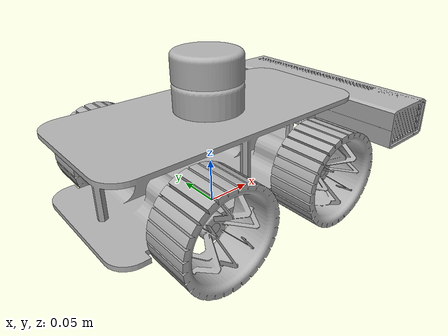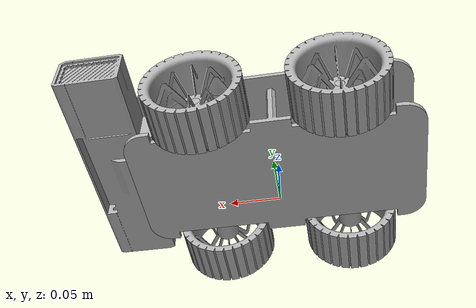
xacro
<?xml version="1.0" ?>
<robot name="pathfinder" xmlns:xacro="http://www.ros.org/wiki/xacro">

<xacro:include filename="$(find pathfinder_description)/urdf/materials.xacro" />
<xacro:include filename="$(find pathfinder_description)/urdf/pathfinder.trans" />

<xacro:include filename="$(find pathfinder_description)/gazebo/pathfinder_description_materials.gazebo" />
<xacro:include filename="$(find pathfinder_description)/gazebo/pathfinder_description_physics.gazebo" />
<xacro:include filename="$(find pathfinder_description)/gazebo/pathfinder_description_plugins.gazebo" />

<link name="base_link">
  <inertial>
    <origin rpy="0 0 0" xyz="-1.1752552426393709e-16 5.876276213196854e-17 0.0736276069033502"/>
    <mass value="4.6586970268492465"/>
    <inertia ixx="0.013672" ixy="0.0" ixz="-0.0" iyy="0.032955" iyz="-0.0" izz="0.033477"/>
  </inertial>
  <visual>
    <origin rpy="0 0 0" xyz="0 0 0"/>
    <geometry>
      <mesh filename="package://pathfinder_description/meshes/base_link.stl" scale="0.001 0.001 0.001"/>
    </geometry>
    <material name="silver"/>
  </visual>
  <collision>
    <origin rpy="0 0 0" xyz="0 0 0"/>
    <geometry>
      <mesh filename="package://pathfinder_description/meshes/base_link.stl" scale="0.001 0.001 0.001"/>
    </geometry>
  </collision>
</link>

<link name="kinect_link_1">
  <inertial>
    <origin rpy="0 0 0" xyz="0.021463788268805295 0.0005758268808835205 -0.02206711015374241"/>
    <mass value="1.650508832327415"/>
    <inertia ixx="0.02781" ixy="0.000158" ixz="-0.000109" iyy="0.003289" iyz="2.2e-05" izz="0.029269"/>
  </inertial>
  <visual>
    <origin rpy="0 0 0" xyz="-0.15 -0.0 -0.105"/>
    <geometry>
      <mesh filename="package://pathfinder_description/meshes/kinect_link_1.stl" scale="0.001 0.001 0.001"/>
    </geometry>
    <material name="silver"/>
  </visual>
  <collision>
    <origin rpy="0 0 0" xyz="-0.15 -0.0 -0.105"/>
    <geometry>
      <mesh filename="package://pathfinder_description/meshes/kinect_link_1.stl" scale="0.001 0.001 0.001"/>
    </geometry>
  </collision>
</link>

<link name="lidar_link_1">
  <inertial>
    <origin rpy="0 0 0" xyz="-4.634107258209184e-18 4.634107258209184e-18 0.014866098910764486"/>
    <mass value="0.7384321563465578"/>
    <inertia ixx="0.000295" ixy="0.0" ixz="0.0" iyy="0.000295" iyz="-0.0" izz="0.000481"/>
  </inertial>
  <visual>
    <origin rpy="0 0 0" xyz="-0.0 -0.0 -0.14"/>
    <geometry>
      <mesh filename="package://pathfinder_description/meshes/lidar_link_1.stl" scale="0.001 0.001 0.001"/>
    </geometry>
    <material name="silver"/>
  </visual>
  <collision>
    <origin rpy="0 0 0" xyz="-0.0 -0.0 -0.14"/>
    <geometry>
      <mesh filename="package://pathfinder_description/meshes/lidar_link_1.stl" scale="0.001 0.001 0.001"/>
    </geometry>
  </collision>
</link>

<link name="fr_wheel_1">
  <inertial>
    <origin rpy="0 0 0" xyz="-3.215640900638972e-07 0.0007481673887969331 -1.8936020806936682e-10"/>
    <mass value="0.6465952825483331"/>
    <inertia ixx="0.000739" ixy="-0.0" ixz="0.0" iyy="0.001218" iyz="0.0" izz="0.000739"/>
  </inertial>
  <visual>
    <origin rpy="0 0 0" xyz="-0.070134 0.095 -0.05"/>
    <geometry>
      <mesh filename="package://pathfinder_description/meshes/fr_wheel_1.stl" scale="0.001 0.001 0.001"/>
    </geometry>
    <material name="silver"/>
  </visual>
  <collision>
    <origin rpy="0 0 0" xyz="-0.070134 0.095 -0.05"/>
    <geometry>
      <mesh filename="package://pathfinder_description/meshes/fr_wheel_1.stl" scale="0.001 0.001 0.001"/>
    </geometry>
  </collision>
</link>

<link name="rl_wheel_1">
  <inertial>
    <origin rpy="0 0 0" xyz="3.2156409002226383e-07 -0.0007481673887969331 -1.8936038848060832e-10"/>
    <mass value="0.6465952825483331"/>
    <inertia ixx="0.000739" ixy="-0.0" ixz="-0.0" iyy="0.001218" iyz="-0.0" izz="0.000739"/>
  </inertial>
  <visual>
    <origin rpy="0 0 0" xyz="0.070134 -0.095 -0.05"/>
    <geometry>
      <mesh filename="package://pathfinder_description/meshes/rl_wheel_1.stl" scale="0.001 0.001 0.001"/>
    </geometry>
    <material name="silver"/>
  </visual>
  <collision>
    <origin rpy="0 0 0" xyz="0.070134 -0.095 -0.05"/>
    <geometry>
      <mesh filename="package://pathfinder_description/meshes/rl_wheel_1.stl" scale="0.001 0.001 0.001"/>
    </geometry>
  </collision>
</link>

<link name="fl_wheel_1">
  <inertial>
    <origin rpy="0 0 0" xyz="-3.219730995429604e-07 -0.0007481653815892414 9.377970136559277e-10"/>
    <mass value="0.6465951127279741"/>
    <inertia ixx="0.000739" ixy="-0.0" ixz="-0.0" iyy="0.001218" iyz="-0.0" izz="0.000739"/>
  </inertial>
  <visual>
    <origin rpy="0 0 0" xyz="-0.070134 -0.095 -0.05"/>
    <geometry>
      <mesh filename="package://pathfinder_description/meshes/fl_wheel_1.stl" scale="0.001 0.001 0.001"/>
    </geometry>
    <material name="silver"/>
  </visual>
  <collision>
    <origin rpy="0 0 0" xyz="-0.070134 -0.095 -0.05"/>
    <geometry>
      <mesh filename="package://pathfinder_description/meshes/fl_wheel_1.stl" scale="0.001 0.001 0.001"/>
    </geometry>
  </collision>
</link>

<link name="rr_wheel_1">
  <inertial>
    <origin rpy="0 0 0" xyz="3.2168768794582636e-07 0.0007481653815892414 -8.339158530379365e-10"/>
    <mass value="0.6465951127279755"/>
    <inertia ixx="0.000739" ixy="-0.0" ixz="-0.0" iyy="0.001218" iyz="-0.0" izz="0.000739"/>
  </inertial>
  <visual>
    <origin rpy="0 0 0" xyz="0.070134 0.095 -0.05"/>
    <geometry>
      <mesh filename="package://pathfinder_description/meshes/rr_wheel_1.stl" scale="0.001 0.001 0.001"/>
    </geometry>
    <material name="silver"/>
  </visual>
  <collision>
    <origin rpy="0 0 0" xyz="0.070134 0.095 -0.05"/>
    <geometry>
      <mesh filename="package://pathfinder_description/meshes/rr_wheel_1.stl" scale="0.001 0.001 0.001"/>
    </geometry>
  </collision>
</link>

<joint name="kinect_joint" type="fixed">
  <origin rpy="0 0 0" xyz="0.15 0.0 0.105"/>
  <parent link="base_link"/>
  <child link="kinect_link_1"/>
</joint>

<joint name="lidar_joint" type="fixed">
  <origin rpy="0 0 0" xyz="0.0 0.0 0.14"/>
  <parent link="base_link"/>
  <child link="lidar_link_1"/>
</joint>

<joint name="fr_motor" type="continuous">
  <origin rpy="0 0 0" xyz="0.070134 -0.095 0.05"/>
  <parent link="base_link"/>
  <child link="fr_wheel_1"/>
  <axis xyz="0.0 1.0 0.0"/>
</joint>

<joint name="rl_motor" type="continuous">
  <origin rpy="0 0 0" xyz="-0.070134 0.095 0.05"/>
  <parent link="base_link"/>
  <child link="rl_wheel_1"/>
  <axis xyz="-0.0 1.0 0.0"/>
</joint>

<joint name="fl_motor" type="continuous">
  <origin rpy="0 0 0" xyz="0.070134 0.095 0.05"/>
  <parent link="base_link"/>
  <child link="fl_wheel_1"/>
  <axis xyz="0.0 1.0 0.0"/>
</joint>

<joint name="rr_motor" type="continuous">
  <origin rpy="0 0 0" xyz="-0.070134 -0.095 0.05"/>
  <parent link="base_link"/>
  <child link="rr_wheel_1"/>
  <axis xyz="-0.0 1.0 0.0"/>
</joint>

</robot>

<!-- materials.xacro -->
<robot name="pathfinder" xmlns:xacro="http://www.ros.org/wiki/xacro" >

<material name="silver">
  <color rgba="0.700 0.700 0.700 1.000"/>
</material>

</robot>

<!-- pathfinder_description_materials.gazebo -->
<robot name="pathfinder" xmlns:xacro="http://www.ros.org/wiki/xacro" >

<xacro:property name="body_color" value="Gazebo/White" />
<xacro:property name="sensor_color" value="Gazebo/Red" />
<xacro:property name="wheel_color" value="Gazebo/Black" />

<gazebo reference="base_link">
  <material>${body_color}</material>

</gazebo>

<gazebo reference="kinect_link_1">
  <material>${sensor_color}</material>

</gazebo>

<gazebo reference="lidar_link_1">
  <material>${sensor_color}</material>

</gazebo>

<gazebo reference="fr_wheel_1">
  <material>${wheel_color}</material>

</gazebo>

<gazebo reference="rl_wheel_1">
  <material>${wheel_color}</material>

</gazebo>

<gazebo reference="fl_wheel_1">
  <material>${wheel_color}</material>

</gazebo>

<gazebo reference="rr_wheel_1">
  <material>${wheel_color}</material>

</gazebo>

</robot>
